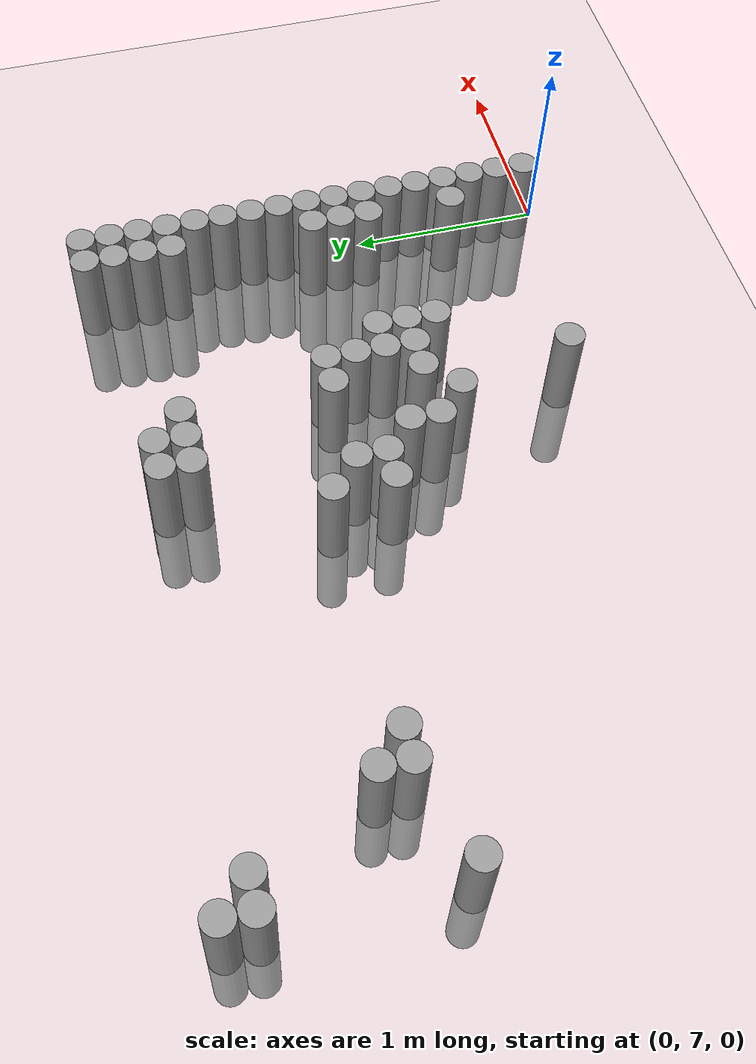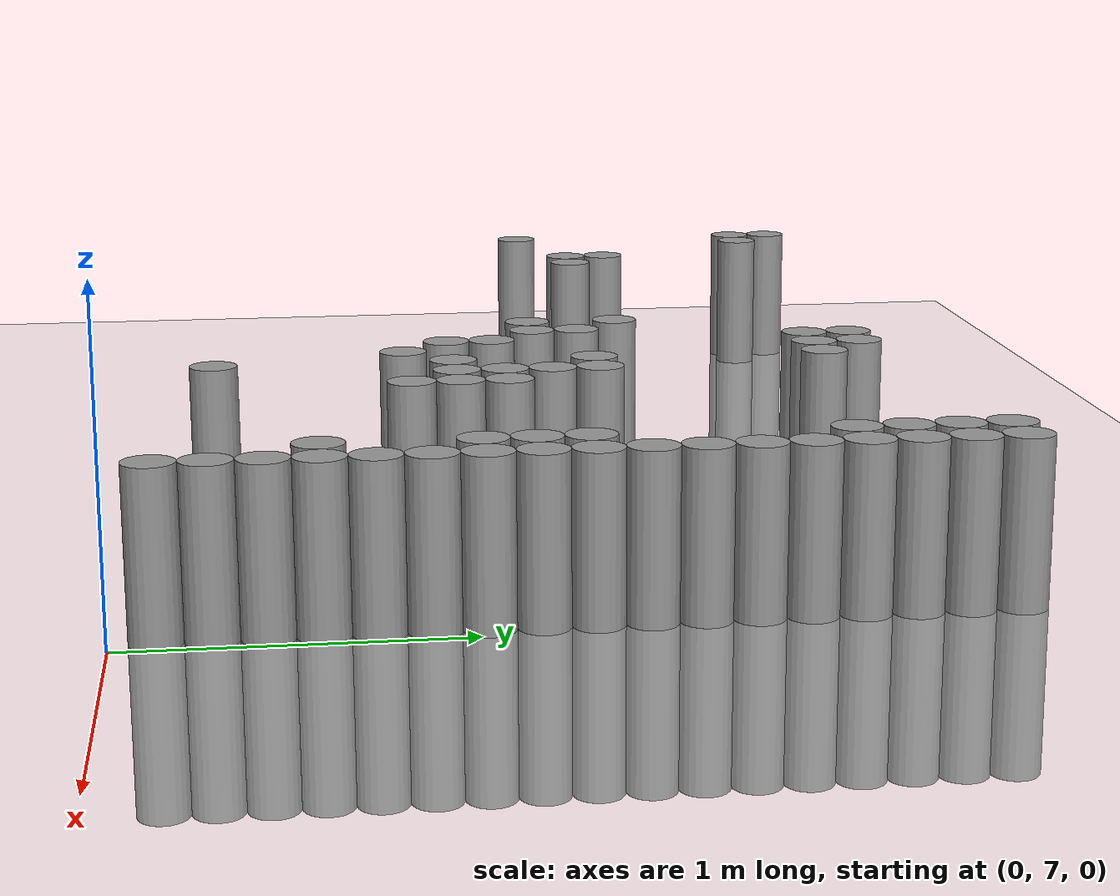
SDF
<sdf version="1.6">
 <world name="default">
  <model name="ground_plane">
   <static>1</static>
   <link name="link">
    <collision name="collision">
     <geometry><plane><normal>0 0 1</normal><size>100 100</size></plane></geometry>
     <surface><friction><ode><mu>100</mu><mu2>50</mu2></ode></friction></surface>
    </collision>
    <visual name="visual">
     <cast_shadows>0</cast_shadows>
     <geometry><plane><normal>0 0 1</normal><size>100 100</size></plane></geometry>
     <material>
      <script><uri>file://media/materials/scripts/gazebo.material</uri><name>Gazebo/Grey</name></script>
     </material>
    </visual>
   </link>
  </model>
  <model name="unit_cylinder_154">
   <pose>-3.675000 8.475000 0.000000 0.000000 0.000000 0.000000</pose>
   <link name="link">
    <inertial>
     <mass>1</mass>
     <inertia><ixx>0.145833</ixx><ixy>0</ixy><ixz>0</ixz><iyy>0.145833</iyy><iyz>0</iyz><izz>0.125</izz></inertia>
    </inertial>
    <collision name="collision">
     <geometry><cylinder><radius>0.075000</radius><length>1</length></cylinder></geometry>
    </collision>
    <visual name="visual">
     <geometry><cylinder><radius>0.075000</radius><length>1</length></cylinder></geometry>
     <material>
      <script><name>Gazebo/Grey</name><uri>file://media/materials/scripts/gazebo.material</uri></script>
     </material>
    </visual>
   </link>
  </model>
  <model name="unit_cylinder_155">
   <pose>-3.675000 9.375000 0.000000 0.000000 0.000000 0.000000</pose>
   <link name="link">
    <inertial>
     <mass>1</mass>
     <inertia><ixx>0.145833</ixx><ixy>0</ixy><ixz>0</ixz><iyy>0.145833</iyy><iyz>0</iyz><izz>0.125</izz></inertia>
    </inertial>
    <collision name="collision">
     <geometry><cylinder><radius>0.075000</radius><length>1</length></cylinder></geometry>
    </collision>
    <visual name="visual">
     <geometry><cylinder><radius>0.075000</radius><length>1</length></cylinder></geometry>
     <material>
      <script><name>Gazebo/Grey</name><uri>file://media/materials/scripts/gazebo.material</uri></script>
     </material>
    </visual>
   </link>
  </model>
  <model name="unit_cylinder_156">
   <pose>-3.675000 9.525000 0.000000 0.000000 0.000000 0.000000</pose>
   <link name="link">
    <inertial>
     <mass>1</mass>
     <inertia><ixx>0.145833</ixx><ixy>0</ixy><ixz>0</ixz><iyy>0.145833</iyy><iyz>0</iyz><izz>0.125</izz></inertia>
    </inertial>
    <collision name="collision">
     <geometry><cylinder><radius>0.075000</radius><length>1</length></cylinder></geometry>
    </collision>
    <visual name="visual">
     <geometry><cylinder><radius>0.075000</radius><length>1</length></cylinder></geometry>
     <material>
      <script><name>Gazebo/Grey</name><uri>file://media/materials/scripts/gazebo.material</uri></script>
     </material>
    </visual>
   </link>
  </model>
  <model name="unit_cylinder_157">
   <pose>-3.525000 9.375000 0.000000 0.000000 0.000000 0.000000</pose>
   <link name="link">
    <inertial>
     <mass>1</mass>
     <inertia><ixx>0.145833</ixx><ixy>0</ixy><ixz>0</ixz><iyy>0.145833</iyy><iyz>0</iyz><izz>0.125</izz></inertia>
    </inertial>
    <collision name="collision">
     <geometry><cylinder><radius>0.075000</radius><length>1</length></cylinder></geometry>
    </collision>
    <visual name="visual">
     <geometry><cylinder><radius>0.075000</radius><length>1</length></cylinder></geometry>
     <material>
      <script><name>Gazebo/Grey</name><uri>file://media/materials/scripts/gazebo.material</uri></script>
     </material>
    </visual>
   </link>
  </model>
  <model name="unit_cylinder_159">
   <pose>-3.225000 8.625000 0.000000 0.000000 0.000000 0.000000</pose>
   <link name="link">
    <inertial>
     <mass>1</mass>
     <inertia><ixx>0.145833</ixx><ixy>0</ixy><ixz>0</ixz><iyy>0.145833</iyy><iyz>0</iyz><izz>0.125</izz></inertia>
    </inertial>
    <collision name="collision">
     <geometry><cylinder><radius>0.075000</radius><length>1</length></cylinder></geometry>
    </collision>
    <visual name="visual">
     <geometry><cylinder><radius>0.075000</radius><length>1</length></cylinder></geometry>
     <material>
      <script><name>Gazebo/Grey</name><uri>file://media/materials/scripts/gazebo.material</uri></script>
     </material>
    </visual>
   </link>
  </model>
  <model name="unit_cylinder_160">
   <pose>-3.225000 8.775000 0.000000 0.000000 0.000000 0.000000</pose>
   <link name="link">
    <inertial>
     <mass>1</mass>
     <inertia><ixx>0.145833</ixx><ixy>0</ixy><ixz>0</ixz><iyy>0.145833</iyy><iyz>0</iyz><izz>0.125</izz></inertia>
    </inertial>
    <collision name="collision">
     <geometry><cylinder><radius>0.075000</radius><length>1</length></cylinder></geometry>
    </collision>
    <visual name="visual">
     <geometry><cylinder><radius>0.075000</radius><length>1</length></cylinder></geometry>
     <material>
      <script><name>Gazebo/Grey</name><uri>file://media/materials/scripts/gazebo.material</uri></script>
     </material>
    </visual>
   </link>
  </model>
  <model name="unit_cylinder_163">
   <pose>-3.075000 8.625000 0.000000 0.000000 0.000000 0.000000</pose>
   <link name="link">
    <inertial>
     <mass>1</mass>
     <inertia><ixx>0.145833</ixx><ixy>0</ixy><ixz>0</ixz><iyy>0.145833</iyy><iyz>0</iyz><izz>0.125</izz></inertia>
    </inertial>
    <collision name="collision">
     <geometry><cylinder><radius>0.075000</radius><length>1</length></cylinder></geometry>
    </collision>
    <visual name="visual">
     <geometry><cylinder><radius>0.075000</radius><length>1</length></cylinder></geometry>
     <material>
      <script><name>Gazebo/Grey</name><uri>file://media/materials/scripts/gazebo.material</uri></script>
     </material>
    </visual>
   </link>
  </model>
  <model name="unit_cylinder_178">
   <pose>-1.875000 8.325000 0.000000 0.000000 0.000000 0.000000</pose>
   <link name="link">
    <inertial>
     <mass>1</mass>
     <inertia><ixx>0.145833</ixx><ixy>0</ixy><ixz>0</ixz><iyy>0.145833</iyy><iyz>0</iyz><izz>0.125</izz></inertia>
    </inertial>
    <collision name="collision">
     <geometry><cylinder><radius>0.075000</radius><length>1</length></cylinder></geometry>
    </collision>
    <visual name="visual">
     <geometry><cylinder><radius>0.075000</radius><length>1</length></cylinder></geometry>
     <material>
      <script><name>Gazebo/Grey</name><uri>file://media/materials/scripts/gazebo.material</uri></script>
     </material>
    </visual>
   </link>
  </model>
  <model name="unit_cylinder_179">
   <pose>-1.875000 8.625000 0.000000 0.000000 0.000000 0.000000</pose>
   <link name="link">
    <inertial>
     <mass>1</mass>
     <inertia><ixx>0.145833</ixx><ixy>0</ixy><ixz>0</ixz><iyy>0.145833</iyy><iyz>0</iyz><izz>0.125</izz></inertia>
    </inertial>
    <collision name="collision">
     <geometry><cylinder><radius>0.075000</radius><length>1</length></cylinder></geometry>
    </collision>
    <visual name="visual">
     <geometry><cylinder><radius>0.075000</radius><length>1</length></cylinder></geometry>
     <material>
      <script><name>Gazebo/Grey</name><uri>file://media/materials/scripts/gazebo.material</uri></script>
     </material>
    </visual>
   </link>
  </model>
  <model name="unit_cylinder_182">
   <pose>-1.725000 8.325000 0.000000 0.000000 0.000000 0.000000</pose>
   <link name="link">
    <inertial>
     <mass>1</mass>
     <inertia><ixx>0.145833</ixx><ixy>0</ixy><ixz>0</ixz><iyy>0.145833</iyy><iyz>0</iyz><izz>0.125</izz></inertia>
    </inertial>
    <collision name="collision">
     <geometry><cylinder><radius>0.075000</radius><length>1</length></cylinder></geometry>
    </collision>
    <visual name="visual">
     <geometry><cylinder><radius>0.075000</radius><length>1</length></cylinder></geometry>
     <material>
      <script><name>Gazebo/Grey</name><uri>file://media/materials/scripts/gazebo.material</uri></script>
     </material>
    </visual>
   </link>
  </model>
  <model name="unit_cylinder_183">
   <pose>-1.725000 8.475000 0.000000 0.000000 0.000000 0.000000</pose>
   <link name="link">
    <inertial>
     <mass>1</mass>
     <inertia><ixx>0.145833</ixx><ixy>0</ixy><ixz>0</ixz><iyy>0.145833</iyy><iyz>0</iyz><izz>0.125</izz></inertia>
    </inertial>
    <collision name="collision">
     <geometry><cylinder><radius>0.075000</radius><length>1</length></cylinder></geometry>
    </collision>
    <visual name="visual">
     <geometry><cylinder><radius>0.075000</radius><length>1</length></cylinder></geometry>
     <material>
      <script><name>Gazebo/Grey</name><uri>file://media/materials/scripts/gazebo.material</uri></script>
     </material>
    </visual>
   </link>
  </model>
  <model name="unit_cylinder_189">
   <pose>-1.575000 8.025000 0.000000 0.000000 0.000000 0.000000</pose>
   <link name="link">
    <inertial>
     <mass>1</mass>
     <inertia><ixx>0.145833</ixx><ixy>0</ixy><ixz>0</ixz><iyy>0.145833</iyy><iyz>0</iyz><izz>0.125</izz></inertia>
    </inertial>
    <collision name="collision">
     <geometry><cylinder><radius>0.075000</radius><length>1</length></cylinder></geometry>
    </collision>
    <visual name="visual">
     <geometry><cylinder><radius>0.075000</radius><length>1</length></cylinder></geometry>
     <material>
      <script><name>Gazebo/Grey</name><uri>file://media/materials/scripts/gazebo.material</uri></script>
     </material>
    </visual>
   </link>
  </model>
  <model name="unit_cylinder_190">
   <pose>-1.575000 8.175000 0.000000 0.000000 0.000000 0.000000</pose>
   <link name="link">
    <inertial>
     <mass>1</mass>
     <inertia><ixx>0.145833</ixx><ixy>0</ixy><ixz>0</ixz><iyy>0.145833</iyy><iyz>0</iyz><izz>0.125</izz></inertia>
    </inertial>
    <collision name="collision">
     <geometry><cylinder><radius>0.075000</radius><length>1</length></cylinder></geometry>
    </collision>
    <visual name="visual">
     <geometry><cylinder><radius>0.075000</radius><length>1</length></cylinder></geometry>
     <material>
      <script><name>Gazebo/Grey</name><uri>file://media/materials/scripts/gazebo.material</uri></script>
     </material>
    </visual>
   </link>
  </model>
  <model name="unit_cylinder_191">
   <pose>-1.575000 9.225000 0.000000 0.000000 0.000000 0.000000</pose>
   <link name="link">
    <inertial>
     <mass>1</mass>
     <inertia><ixx>0.145833</ixx><ixy>0</ixy><ixz>0</ixz><iyy>0.145833</iyy><iyz>0</iyz><izz>0.125</izz></inertia>
    </inertial>
    <collision name="collision">
     <geometry><cylinder><radius>0.075000</radius><length>1</length></cylinder></geometry>
    </collision>
    <visual name="visual">
     <geometry><cylinder><radius>0.075000</radius><length>1</length></cylinder></geometry>
     <material>
      <script><name>Gazebo/Grey</name><uri>file://media/materials/scripts/gazebo.material</uri></script>
     </material>
    </visual>
   </link>
  </model>
  <model name="unit_cylinder_192">
   <pose>-1.575000 9.375000 0.000000 0.000000 0.000000 0.000000</pose>
   <link name="link">
    <inertial>
     <mass>1</mass>
     <inertia><ixx>0.145833</ixx><ixy>0</ixy><ixz>0</ixz><iyy>0.145833</iyy><iyz>0</iyz><izz>0.125</izz></inertia>
    </inertial>
    <collision name="collision">
     <geometry><cylinder><radius>0.075000</radius><length>1</length></cylinder></geometry>
    </collision>
    <visual name="visual">
     <geometry><cylinder><radius>0.075000</radius><length>1</length></cylinder></geometry>
     <material>
      <script><name>Gazebo/Grey</name><uri>file://media/materials/scripts/gazebo.material</uri></script>
     </material>
    </visual>
   </link>
  </model>
  <model name="unit_cylinder_199">
   <pose>-1.425000 7.875000 0.000000 0.000000 0.000000 0.000000</pose>
   <link name="link">
    <inertial>
     <mass>1</mass>
     <inertia><ixx>0.145833</ixx><ixy>0</ixy><ixz>0</ixz><iyy>0.145833</iyy><iyz>0</iyz><izz>0.125</izz></inertia>
    </inertial>
    <collision name="collision">
     <geometry><cylinder><radius>0.075000</radius><length>1</length></cylinder></geometry>
    </collision>
    <visual name="visual">
     <geometry><cylinder><radius>0.075000</radius><length>1</length></cylinder></geometry>
     <material>
      <script><name>Gazebo/Grey</name><uri>file://media/materials/scripts/gazebo.material</uri></script>
     </material>
    </visual>
   </link>
  </model>
  <model name="unit_cylinder_200">
   <pose>-1.425000 9.225000 0.000000 0.000000 0.000000 0.000000</pose>
   <link name="link">
    <inertial>
     <mass>1</mass>
     <inertia><ixx>0.145833</ixx><ixy>0</ixy><ixz>0</ixz><iyy>0.145833</iyy><iyz>0</iyz><izz>0.125</izz></inertia>
    </inertial>
    <collision name="collision">
     <geometry><cylinder><radius>0.075000</radius><length>1</length></cylinder></geometry>
    </collision>
    <visual name="visual">
     <geometry><cylinder><radius>0.075000</radius><length>1</length></cylinder></geometry>
     <material>
      <script><name>Gazebo/Grey</name><uri>file://media/materials/scripts/gazebo.material</uri></script>
     </material>
    </visual>
   </link>
  </model>
  <model name="unit_cylinder_201">
   <pose>-1.425000 9.375000 0.000000 0.000000 0.000000 0.000000</pose>
   <link name="link">
    <inertial>
     <mass>1</mass>
     <inertia><ixx>0.145833</ixx><ixy>0</ixy><ixz>0</ixz><iyy>0.145833</iyy><iyz>0</iyz><izz>0.125</izz></inertia>
    </inertial>
    <collision name="collision">
     <geometry><cylinder><radius>0.075000</radius><length>1</length></cylinder></geometry>
    </collision>
    <visual name="visual">
     <geometry><cylinder><radius>0.075000</radius><length>1</length></cylinder></geometry>
     <material>
      <script><name>Gazebo/Grey</name><uri>file://media/materials/scripts/gazebo.material</uri></script>
     </material>
    </visual>
   </link>
  </model>
  <model name="unit_cylinder_206">
   <pose>-1.275000 7.275000 0.000000 0.000000 0.000000 0.000000</pose>
   <link name="link">
    <inertial>
     <mass>1</mass>
     <inertia><ixx>0.145833</ixx><ixy>0</ixy><ixz>0</ixz><iyy>0.145833</iyy><iyz>0</iyz><izz>0.125</izz></inertia>
    </inertial>
    <collision name="collision">
     <geometry><cylinder><radius>0.075000</radius><length>1</length></cylinder></geometry>
    </collision>
    <visual name="visual">
     <geometry><cylinder><radius>0.075000</radius><length>1</length></cylinder></geometry>
     <material>
      <script><name>Gazebo/Grey</name><uri>file://media/materials/scripts/gazebo.material</uri></script>
     </material>
    </visual>
   </link>
  </model>
  <model name="unit_cylinder_207">
   <pose>-1.275000 8.025000 0.000000 0.000000 0.000000 0.000000</pose>
   <link name="link">
    <inertial>
     <mass>1</mass>
     <inertia><ixx>0.145833</ixx><ixy>0</ixy><ixz>0</ixz><iyy>0.145833</iyy><iyz>0</iyz><izz>0.125</izz></inertia>
    </inertial>
    <collision name="collision">
     <geometry><cylinder><radius>0.075000</radius><length>1</length></cylinder></geometry>
    </collision>
    <visual name="visual">
     <geometry><cylinder><radius>0.075000</radius><length>1</length></cylinder></geometry>
     <material>
      <script><name>Gazebo/Grey</name><uri>file://media/materials/scripts/gazebo.material</uri></script>
     </material>
    </visual>
   </link>
  </model>
  <model name="unit_cylinder_208">
   <pose>-1.275000 8.475000 0.000000 0.000000 0.000000 0.000000</pose>
   <link name="link">
    <inertial>
     <mass>1</mass>
     <inertia><ixx>0.145833</ixx><ixy>0</ixy><ixz>0</ixz><iyy>0.145833</iyy><iyz>0</iyz><izz>0.125</izz></inertia>
    </inertial>
    <collision name="collision">
     <geometry><cylinder><radius>0.075000</radius><length>1</length></cylinder></geometry>
    </collision>
    <visual name="visual">
     <geometry><cylinder><radius>0.075000</radius><length>1</length></cylinder></geometry>
     <material>
      <script><name>Gazebo/Grey</name><uri>file://media/materials/scripts/gazebo.material</uri></script>
     </material>
    </visual>
   </link>
  </model>
  <model name="unit_cylinder_209">
   <pose>-1.275000 9.225000 0.000000 0.000000 0.000000 0.000000</pose>
   <link name="link">
    <inertial>
     <mass>1</mass>
     <inertia><ixx>0.145833</ixx><ixy>0</ixy><ixz>0</ixz><iyy>0.145833</iyy><iyz>0</iyz><izz>0.125</izz></inertia>
    </inertial>
    <collision name="collision">
     <geometry><cylinder><radius>0.075000</radius><length>1</length></cylinder></geometry>
    </collision>
    <visual name="visual">
     <geometry><cylinder><radius>0.075000</radius><length>1</length></cylinder></geometry>
     <material>
      <script><name>Gazebo/Grey</name><uri>file://media/materials/scripts/gazebo.material</uri></script>
     </material>
    </visual>
   </link>
  </model>
  <model name="unit_cylinder_211">
   <pose>-1.125000 8.025000 0.000000 0.000000 0.000000 0.000000</pose>
   <link name="link">
    <inertial>
     <mass>1</mass>
     <inertia><ixx>0.145833</ixx><ixy>0</ixy><ixz>0</ixz><iyy>0.145833</iyy><iyz>0</iyz><izz>0.125</izz></inertia>
    </inertial>
    <collision name="collision">
     <geometry><cylinder><radius>0.075000</radius><length>1</length></cylinder></geometry>
    </collision>
    <visual name="visual">
     <geometry><cylinder><radius>0.075000</radius><length>1</length></cylinder></geometry>
     <material>
      <script><name>Gazebo/Grey</name><uri>file://media/materials/scripts/gazebo.material</uri></script>
     </material>
    </visual>
   </link>
  </model>
  <model name="unit_cylinder_212">
   <pose>-1.125000 8.175000 0.000000 0.000000 0.000000 0.000000</pose>
   <link name="link">
    <inertial>
     <mass>1</mass>
     <inertia><ixx>0.145833</ixx><ixy>0</ixy><ixz>0</ixz><iyy>0.145833</iyy><iyz>0</iyz><izz>0.125</izz></inertia>
    </inertial>
    <collision name="collision">
     <geometry><cylinder><radius>0.075000</radius><length>1</length></cylinder></geometry>
    </collision>
    <visual name="visual">
     <geometry><cylinder><radius>0.075000</radius><length>1</length></cylinder></geometry>
     <material>
      <script><name>Gazebo/Grey</name><uri>file://media/materials/scripts/gazebo.material</uri></script>
     </material>
    </visual>
   </link>
  </model>
  <model name="unit_cylinder_213">
   <pose>-1.125000 8.325000 0.000000 0.000000 0.000000 0.000000</pose>
   <link name="link">
    <inertial>
     <mass>1</mass>
     <inertia><ixx>0.145833</ixx><ixy>0</ixy><ixz>0</ixz><iyy>0.145833</iyy><iyz>0</iyz><izz>0.125</izz></inertia>
    </inertial>
    <collision name="collision">
     <geometry><cylinder><radius>0.075000</radius><length>1</length></cylinder></geometry>
    </collision>
    <visual name="visual">
     <geometry><cylinder><radius>0.075000</radius><length>1</length></cylinder></geometry>
     <material>
      <script><name>Gazebo/Grey</name><uri>file://media/materials/scripts/gazebo.material</uri></script>
     </material>
    </visual>
   </link>
  </model>
  <model name="unit_cylinder_214">
   <pose>-1.125000 8.475000 0.000000 0.000000 0.000000 0.000000</pose>
   <link name="link">
    <inertial>
     <mass>1</mass>
     <inertia><ixx>0.145833</ixx><ixy>0</ixy><ixz>0</ixz><iyy>0.145833</iyy><iyz>0</iyz><izz>0.125</izz></inertia>
    </inertial>
    <collision name="collision">
     <geometry><cylinder><radius>0.075000</radius><length>1</length></cylinder></geometry>
    </collision>
    <visual name="visual">
     <geometry><cylinder><radius>0.075000</radius><length>1</length></cylinder></geometry>
     <material>
      <script><name>Gazebo/Grey</name><uri>file://media/materials/scripts/gazebo.material</uri></script>
     </material>
    </visual>
   </link>
  </model>
  <model name="unit_cylinder_216">
   <pose>-0.975000 7.875000 0.000000 0.000000 0.000000 0.000000</pose>
   <link name="link">
    <inertial>
     <mass>1</mass>
     <inertia><ixx>0.145833</ixx><ixy>0</ixy><ixz>0</ixz><iyy>0.145833</iyy><iyz>0</iyz><izz>0.125</izz></inertia>
    </inertial>
    <collision name="collision">
     <geometry><cylinder><radius>0.075000</radius><length>1</length></cylinder></geometry>
    </collision>
    <visual name="visual">
     <geometry><cylinder><radius>0.075000</radius><length>1</length></cylinder></geometry>
     <material>
      <script><name>Gazebo/Grey</name><uri>file://media/materials/scripts/gazebo.material</uri></script>
     </material>
    </visual>
   </link>
  </model>
  <model name="unit_cylinder_217">
   <pose>-0.975000 8.025000 0.000000 0.000000 0.000000 0.000000</pose>
   <link name="link">
    <inertial>
     <mass>1</mass>
     <inertia><ixx>0.145833</ixx><ixy>0</ixy><ixz>0</ixz><iyy>0.145833</iyy><iyz>0</iyz><izz>0.125</izz></inertia>
    </inertial>
    <collision name="collision">
     <geometry><cylinder><radius>0.075000</radius><length>1</length></cylinder></geometry>
    </collision>
    <visual name="visual">
     <geometry><cylinder><radius>0.075000</radius><length>1</length></cylinder></geometry>
     <material>
      <script><name>Gazebo/Grey</name><uri>file://media/materials/scripts/gazebo.material</uri></script>
     </material>
    </visual>
   </link>
  </model>
  <model name="unit_cylinder_218">
   <pose>-0.975000 8.175000 0.000000 0.000000 0.000000 0.000000</pose>
   <link name="link">
    <inertial>
     <mass>1</mass>
     <inertia><ixx>0.145833</ixx><ixy>0</ixy><ixz>0</ixz><iyy>0.145833</iyy><iyz>0</iyz><izz>0.125</izz></inertia>
    </inertial>
    <collision name="collision">
     <geometry><cylinder><radius>0.075000</radius><length>1</length></cylinder></geometry>
    </collision>
    <visual name="visual">
     <geometry><cylinder><radius>0.075000</radius><length>1</length></cylinder></geometry>
     <material>
      <script><name>Gazebo/Grey</name><uri>file://media/materials/scripts/gazebo.material</uri></script>
     </material>
    </visual>
   </link>
  </model>
  <model name="unit_cylinder_231">
   <pose>-0.225000 7.575000 0.000000 0.000000 0.000000 0.000000</pose>
   <link name="link">
    <inertial>
     <mass>1</mass>
     <inertia><ixx>0.145833</ixx><ixy>0</ixy><ixz>0</ixz><iyy>0.145833</iyy><iyz>0</iyz><izz>0.125</izz></inertia>
    </inertial>
    <collision name="collision">
     <geometry><cylinder><radius>0.075000</radius><length>1</length></cylinder></geometry>
    </collision>
    <visual name="visual">
     <geometry><cylinder><radius>0.075000</radius><length>1</length></cylinder></geometry>
     <material>
      <script><name>Gazebo/Grey</name><uri>file://media/materials/scripts/gazebo.material</uri></script>
     </material>
    </visual>
   </link>
  </model>
  <model name="unit_cylinder_232">
   <pose>-0.225000 8.025000 0.000000 0.000000 0.000000 0.000000</pose>
   <link name="link">
    <inertial>
     <mass>1</mass>
     <inertia><ixx>0.145833</ixx><ixy>0</ixy><ixz>0</ixz><iyy>0.145833</iyy><iyz>0</iyz><izz>0.125</izz></inertia>
    </inertial>
    <collision name="collision">
     <geometry><cylinder><radius>0.075000</radius><length>1</length></cylinder></geometry>
    </collision>
    <visual name="visual">
     <geometry><cylinder><radius>0.075000</radius><length>1</length></cylinder></geometry>
     <material>
      <script><name>Gazebo/Grey</name><uri>file://media/materials/scripts/gazebo.material</uri></script>
     </material>
    </visual>
   </link>
  </model>
  <model name="unit_cylinder_233">
   <pose>-0.225000 8.175000 0.000000 0.000000 0.000000 0.000000</pose>
   <link name="link">
    <inertial>
     <mass>1</mass>
     <inertia><ixx>0.145833</ixx><ixy>0</ixy><ixz>0</ixz><iyy>0.145833</iyy><iyz>0</iyz><izz>0.125</izz></inertia>
    </inertial>
    <collision name="collision">
     <geometry><cylinder><radius>0.075000</radius><length>1</length></cylinder></geometry>
    </collision>
    <visual name="visual">
     <geometry><cylinder><radius>0.075000</radius><length>1</length></cylinder></geometry>
     <material>
      <script><name>Gazebo/Grey</name><uri>file://media/materials/scripts/gazebo.material</uri></script>
     </material>
    </visual>
   </link>
  </model>
  <model name="unit_cylinder_234">
   <pose>-0.225000 8.325000 0.000000 0.000000 0.000000 0.000000</pose>
   <link name="link">
    <inertial>
     <mass>1</mass>
     <inertia><ixx>0.145833</ixx><ixy>0</ixy><ixz>0</ixz><iyy>0.145833</iyy><iyz>0</iyz><izz>0.125</izz></inertia>
    </inertial>
    <collision name="collision">
     <geometry><cylinder><radius>0.075000</radius><length>1</length></cylinder></geometry>
    </collision>
    <visual name="visual">
     <geometry><cylinder><radius>0.075000</radius><length>1</length></cylinder></geometry>
     <material>
      <script><name>Gazebo/Grey</name><uri>file://media/materials/scripts/gazebo.material</uri></script>
     </material>
    </visual>
   </link>
  </model>
  <model name="unit_cylinder_235">
   <pose>-0.225000 9.075000 0.000000 0.000000 0.000000 0.000000</pose>
   <link name="link">
    <inertial>
     <mass>1</mass>
     <inertia><ixx>0.145833</ixx><ixy>0</ixy><ixz>0</ixz><iyy>0.145833</iyy><iyz>0</iyz><izz>0.125</izz></inertia>
    </inertial>
    <collision name="collision">
     <geometry><cylinder><radius>0.075000</radius><length>1</length></cylinder></geometry>
    </collision>
    <visual name="visual">
     <geometry><cylinder><radius>0.075000</radius><length>1</length></cylinder></geometry>
     <material>
      <script><name>Gazebo/Grey</name><uri>file://media/materials/scripts/gazebo.material</uri></script>
     </material>
    </visual>
   </link>
  </model>
  <model name="unit_cylinder_236">
   <pose>-0.225000 9.225000 0.000000 0.000000 0.000000 0.000000</pose>
   <link name="link">
    <inertial>
     <mass>1</mass>
     <inertia><ixx>0.145833</ixx><ixy>0</ixy><ixz>0</ixz><iyy>0.145833</iyy><iyz>0</iyz><izz>0.125</izz></inertia>
    </inertial>
    <collision name="collision">
     <geometry><cylinder><radius>0.075000</radius><length>1</length></cylinder></geometry>
    </collision>
    <visual name="visual">
     <geometry><cylinder><radius>0.075000</radius><length>1</length></cylinder></geometry>
     <material>
      <script><name>Gazebo/Grey</name><uri>file://media/materials/scripts/gazebo.material</uri></script>
     </material>
    </visual>
   </link>
  </model>
  <model name="unit_cylinder_237">
   <pose>-0.225000 9.375000 0.000000 0.000000 0.000000 0.000000</pose>
   <link name="link">
    <inertial>
     <mass>1</mass>
     <inertia><ixx>0.145833</ixx><ixy>0</ixy><ixz>0</ixz><iyy>0.145833</iyy><iyz>0</iyz><izz>0.125</izz></inertia>
    </inertial>
    <collision name="collision">
     <geometry><cylinder><radius>0.075000</radius><length>1</length></cylinder></geometry>
    </collision>
    <visual name="visual">
     <geometry><cylinder><radius>0.075000</radius><length>1</length></cylinder></geometry>
     <material>
      <script><name>Gazebo/Grey</name><uri>file://media/materials/scripts/gazebo.material</uri></script>
     </material>
    </visual>
   </link>
  </model>
  <model name="unit_cylinder_238">
   <pose>-0.225000 9.525000 0.000000 0.000000 0.000000 0.000000</pose>
   <link name="link">
    <inertial>
     <mass>1</mass>
     <inertia><ixx>0.145833</ixx><ixy>0</ixy><ixz>0</ixz><iyy>0.145833</iyy><iyz>0</iyz><izz>0.125</izz></inertia>
    </inertial>
    <collision name="collision">
     <geometry><cylinder><radius>0.075000</radius><length>1</length></cylinder></geometry>
    </collision>
    <visual name="visual">
     <geometry><cylinder><radius>0.075000</radius><length>1</length></cylinder></geometry>
     <material>
      <script><name>Gazebo/Grey</name><uri>file://media/materials/scripts/gazebo.material</uri></script>
     </material>
    </visual>
   </link>
  </model>
  <model name="unit_cylinder_252">
   <pose>-0.075000 7.125000 0.000000 0.000000 0.000000 0.000000</pose>
   <link name="link">
    <inertial>
     <mass>1</mass>
     <inertia><ixx>0.145833</ixx><ixy>0</ixy><ixz>0</ixz><iyy>0.145833</iyy><iyz>0</iyz><izz>0.125</izz></inertia>
    </inertial>
    <collision name="collision">
     <geometry><cylinder><radius>0.075000</radius><length>1</length></cylinder></geometry>
    </collision>
    <visual name="visual">
     <geometry><cylinder><radius>0.075000</radius><length>1</length></cylinder></geometry>
     <material>
      <script><name>Gazebo/Grey</name><uri>file://media/materials/scripts/gazebo.material</uri></script>
     </material>
    </visual>
   </link>
  </model>
  <model name="unit_cylinder_253">
   <pose>-0.075000 7.275000 0.000000 0.000000 0.000000 0.000000</pose>
   <link name="link">
    <inertial>
     <mass>1</mass>
     <inertia><ixx>0.145833</ixx><ixy>0</ixy><ixz>0</ixz><iyy>0.145833</iyy><iyz>0</iyz><izz>0.125</izz></inertia>
    </inertial>
    <collision name="collision">
     <geometry><cylinder><radius>0.075000</radius><length>1</length></cylinder></geometry>
    </collision>
    <visual name="visual">
     <geometry><cylinder><radius>0.075000</radius><length>1</length></cylinder></geometry>
     <material>
      <script><name>Gazebo/Grey</name><uri>file://media/materials/scripts/gazebo.material</uri></script>
     </material>
    </visual>
   </link>
  </model>
  <model name="unit_cylinder_254">
   <pose>-0.075000 7.425000 0.000000 0.000000 0.000000 0.000000</pose>
   <link name="link">
    <inertial>
     <mass>1</mass>
     <inertia><ixx>0.145833</ixx><ixy>0</ixy><ixz>0</ixz><iyy>0.145833</iyy><iyz>0</iyz><izz>0.125</izz></inertia>
    </inertial>
    <collision name="collision">
     <geometry><cylinder><radius>0.075000</radius><length>1</length></cylinder></geometry>
    </collision>
    <visual name="visual">
     <geometry><cylinder><radius>0.075000</radius><length>1</length></cylinder></geometry>
     <material>
      <script><name>Gazebo/Grey</name><uri>file://media/materials/scripts/gazebo.material</uri></script>
     </material>
    </visual>
   </link>
  </model>
  <model name="unit_cylinder_255">
   <pose>-0.075000 7.575000 0.000000 0.000000 0.000000 0.000000</pose>
   <link name="link">
    <inertial>
     <mass>1</mass>
     <inertia><ixx>0.145833</ixx><ixy>0</ixy><ixz>0</ixz><iyy>0.145833</iyy><iyz>0</iyz><izz>0.125</izz></inertia>
    </inertial>
    <collision name="collision">
     <geometry><cylinder><radius>0.075000</radius><length>1</length></cylinder></geometry>
    </collision>
    <visual name="visual">
     <geometry><cylinder><radius>0.075000</radius><length>1</length></cylinder></geometry>
     <material>
      <script><name>Gazebo/Grey</name><uri>file://media/materials/scripts/gazebo.material</uri></script>
     </material>
    </visual>
   </link>
  </model>
  <model name="unit_cylinder_256">
   <pose>-0.075000 7.725000 0.000000 0.000000 0.000000 0.000000</pose>
   <link name="link">
    <inertial>
     <mass>1</mass>
     <inertia><ixx>0.145833</ixx><ixy>0</ixy><ixz>0</ixz><iyy>0.145833</iyy><iyz>0</iyz><izz>0.125</izz></inertia>
    </inertial>
    <collision name="collision">
     <geometry><cylinder><radius>0.075000</radius><length>1</length></cylinder></geometry>
    </collision>
    <visual name="visual">
     <geometry><cylinder><radius>0.075000</radius><length>1</length></cylinder></geometry>
     <material>
      <script><name>Gazebo/Grey</name><uri>file://media/materials/scripts/gazebo.material</uri></script>
     </material>
    </visual>
   </link>
  </model>
  <model name="unit_cylinder_257">
   <pose>-0.075000 7.875000 0.000000 0.000000 0.000000 0.000000</pose>
   <link name="link">
    <inertial>
     <mass>1</mass>
     <inertia><ixx>0.145833</ixx><ixy>0</ixy><ixz>0</ixz><iyy>0.145833</iyy><iyz>0</iyz><izz>0.125</izz></inertia>
    </inertial>
    <collision name="collision">
     <geometry><cylinder><radius>0.075000</radius><length>1</length></cylinder></geometry>
    </collision>
    <visual name="visual">
     <geometry><cylinder><radius>0.075000</radius><length>1</length></cylinder></geometry>
     <material>
      <script><name>Gazebo/Grey</name><uri>file://media/materials/scripts/gazebo.material</uri></script>
     </material>
    </visual>
   </link>
  </model>
  <model name="unit_cylinder_258">
   <pose>-0.075000 8.025000 0.000000 0.000000 0.000000 0.000000</pose>
   <link name="link">
    <inertial>
     <mass>1</mass>
     <inertia><ixx>0.145833</ixx><ixy>0</ixy><ixz>0</ixz><iyy>0.145833</iyy><iyz>0</iyz><izz>0.125</izz></inertia>
    </inertial>
    <collision name="collision">
     <geometry><cylinder><radius>0.075000</radius><length>1</length></cylinder></geometry>
    </collision>
    <visual name="visual">
     <geometry><cylinder><radius>0.075000</radius><length>1</length></cylinder></geometry>
     <material>
      <script><name>Gazebo/Grey</name><uri>file://media/materials/scripts/gazebo.material</uri></script>
     </material>
    </visual>
   </link>
  </model>
  <model name="unit_cylinder_259">
   <pose>-0.075000 8.175000 0.000000 0.000000 0.000000 0.000000</pose>
   <link name="link">
    <inertial>
     <mass>1</mass>
     <inertia><ixx>0.145833</ixx><ixy>0</ixy><ixz>0</ixz><iyy>0.145833</iyy><iyz>0</iyz><izz>0.125</izz></inertia>
    </inertial>
    <collision name="collision">
     <geometry><cylinder><radius>0.075000</radius><length>1</length></cylinder></geometry>
    </collision>
    <visual name="visual">
     <geometry><cylinder><radius>0.075000</radius><length>1</length></cylinder></geometry>
     <material>
      <script><name>Gazebo/Grey</name><uri>file://media/materials/scripts/gazebo.material</uri></script>
     </material>
    </visual>
   </link>
  </model>
  <model name="unit_cylinder_260">
   <pose>-0.075000 8.325000 0.000000 0.000000 0.000000 0.000000</pose>
   <link name="link">
    <inertial>
     <mass>1</mass>
     <inertia><ixx>0.145833</ixx><ixy>0</ixy><ixz>0</ixz><iyy>0.145833</iyy><iyz>0</iyz><izz>0.125</izz></inertia>
    </inertial>
    <collision name="collision">
     <geometry><cylinder><radius>0.075000</radius><length>1</length></cylinder></geometry>
    </collision>
    <visual name="visual">
     <geometry><cylinder><radius>0.075000</radius><length>1</length></cylinder></geometry>
     <material>
      <script><name>Gazebo/Grey</name><uri>file://media/materials/scripts/gazebo.material</uri></script>
     </material>
    </visual>
   </link>
  </model>
  <model name="unit_cylinder_261">
   <pose>-0.075000 8.475000 0.000000 0.000000 0.000000 0.000000</pose>
   <link name="link">
    <inertial>
     <mass>1</mass>
     <inertia><ixx>0.145833</ixx><ixy>0</ixy><ixz>0</ixz><iyy>0.145833</iyy><iyz>0</iyz><izz>0.125</izz></inertia>
    </inertial>
    <collision name="collision">
     <geometry><cylinder><radius>0.075000</radius><length>1</length></cylinder></geometry>
    </collision>
    <visual name="visual">
     <geometry><cylinder><radius>0.075000</radius><length>1</length></cylinder></geometry>
     <material>
      <script><name>Gazebo/Grey</name><uri>file://media/materials/scripts/gazebo.material</uri></script>
     </material>
    </visual>
   </link>
  </model>
  <model name="unit_cylinder_262">
   <pose>-0.075000 8.625000 0.000000 0.000000 0.000000 0.000000</pose>
   <link name="link">
    <inertial>
     <mass>1</mass>
     <inertia><ixx>0.145833</ixx><ixy>0</ixy><ixz>0</ixz><iyy>0.145833</iyy><iyz>0</iyz><izz>0.125</izz></inertia>
    </inertial>
    <collision name="collision">
     <geometry><cylinder><radius>0.075000</radius><length>1</length></cylinder></geometry>
    </collision>
    <visual name="visual">
     <geometry><cylinder><radius>0.075000</radius><length>1</length></cylinder></geometry>
     <material>
      <script><name>Gazebo/Grey</name><uri>file://media/materials/scripts/gazebo.material</uri></script>
     </material>
    </visual>
   </link>
  </model>
  <model name="unit_cylinder_263">
   <pose>-0.075000 8.775000 0.000000 0.000000 0.000000 0.000000</pose>
   <link name="link">
    <inertial>
     <mass>1</mass>
     <inertia><ixx>0.145833</ixx><ixy>0</ixy><ixz>0</ixz><iyy>0.145833</iyy><iyz>0</iyz><izz>0.125</izz></inertia>
    </inertial>
    <collision name="collision">
     <geometry><cylinder><radius>0.075000</radius><length>1</length></cylinder></geometry>
    </collision>
    <visual name="visual">
     <geometry><cylinder><radius>0.075000</radius><length>1</length></cylinder></geometry>
     <material>
      <script><name>Gazebo/Grey</name><uri>file://media/materials/scripts/gazebo.material</uri></script>
     </material>
    </visual>
   </link>
  </model>
  <model name="unit_cylinder_264">
   <pose>-0.075000 8.925000 0.000000 0.000000 0.000000 0.000000</pose>
   <link name="link">
    <inertial>
     <mass>1</mass>
     <inertia><ixx>0.145833</ixx><ixy>0</ixy><ixz>0</ixz><iyy>0.145833</iyy><iyz>0</iyz><izz>0.125</izz></inertia>
    </inertial>
    <collision name="collision">
     <geometry><cylinder><radius>0.075000</radius><length>1</length></cylinder></geometry>
    </collision>
    <visual name="visual">
     <geometry><cylinder><radius>0.075000</radius><length>1</length></cylinder></geometry>
     <material>
      <script><name>Gazebo/Grey</name><uri>file://media/materials/scripts/gazebo.material</uri></script>
     </material>
    </visual>
   </link>
  </model>
  <model name="unit_cylinder_265">
   <pose>-0.075000 9.075000 0.000000 0.000000 0.000000 0.000000</pose>
   <link name="link">
    <inertial>
     <mass>1</mass>
     <inertia><ixx>0.145833</ixx><ixy>0</ixy><ixz>0</ixz><iyy>0.145833</iyy><iyz>0</iyz><izz>0.125</izz></inertia>
    </inertial>
    <collision name="collision">
     <geometry><cylinder><radius>0.075000</radius><length>1</length></cylinder></geometry>
    </collision>
    <visual name="visual">
     <geometry><cylinder><radius>0.075000</radius><length>1</length></cylinder></geometry>
     <material>
      <script><name>Gazebo/Grey</name><uri>file://media/materials/scripts/gazebo.material</uri></script>
     </material>
    </visual>
   </link>
  </model>
  <model name="unit_cylinder_266">
   <pose>-0.075000 9.225000 0.000000 0.000000 0.000000 0.000000</pose>
   <link name="link">
    <inertial>
     <mass>1</mass>
     <inertia><ixx>0.145833</ixx><ixy>0</ixy><ixz>0</ixz><iyy>0.145833</iyy><iyz>0</iyz><izz>0.125</izz></inertia>
    </inertial>
    <collision name="collision">
     <geometry><cylinder><radius>0.075000</radius><length>1</length></cylinder></geometry>
    </collision>
    <visual name="visual">
     <geometry><cylinder><radius>0.075000</radius><length>1</length></cylinder></geometry>
     <material>
      <script><name>Gazebo/Grey</name><uri>file://media/materials/scripts/gazebo.material</uri></script>
     </material>
    </visual>
   </link>
  </model>
  <model name="unit_cylinder_267">
   <pose>-0.075000 9.375000 0.000000 0.000000 0.000000 0.000000</pose>
   <link name="link">
    <inertial>
     <mass>1</mass>
     <inertia><ixx>0.145833</ixx><ixy>0</ixy><ixz>0</ixz><iyy>0.145833</iyy><iyz>0</iyz><izz>0.125</izz></inertia>
    </inertial>
    <collision name="collision">
     <geometry><cylinder><radius>0.075000</radius><length>1</length></cylinder></geometry>
    </collision>
    <visual name="visual">
     <geometry><cylinder><radius>0.075000</radius><length>1</length></cylinder></geometry>
     <material>
      <script><name>Gazebo/Grey</name><uri>file://media/materials/scripts/gazebo.material</uri></script>
     </material>
    </visual>
   </link>
  </model>
  <model name="unit_cylinder_268">
   <pose>-0.075000 9.525000 0.000000 0.000000 0.000000 0.000000</pose>
   <link name="link">
    <inertial>
     <mass>1</mass>
     <inertia><ixx>0.145833</ixx><ixy>0</ixy><ixz>0</ixz><iyy>0.145833</iyy><iyz>0</iyz><izz>0.125</izz></inertia>
    </inertial>
    <collision name="collision">
     <geometry><cylinder><radius>0.075000</radius><length>1</length></cylinder></geometry>
    </collision>
    <visual name="visual">
     <geometry><cylinder><radius>0.075000</radius><length>1</length></cylinder></geometry>
     <material>
      <script><name>Gazebo/Grey</name><uri>file://media/materials/scripts/gazebo.material</uri></script>
     </material>
    </visual>
   </link>
  </model>
 </world>
</sdf>
